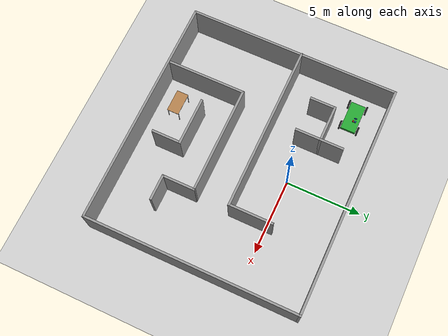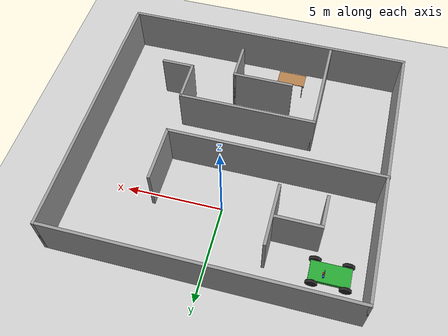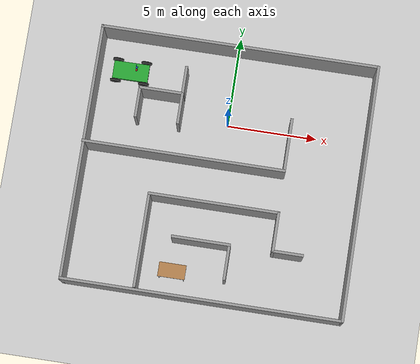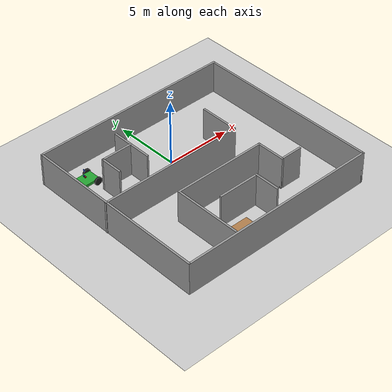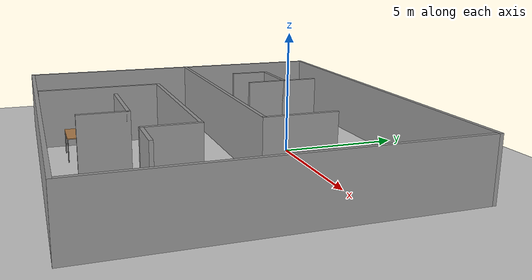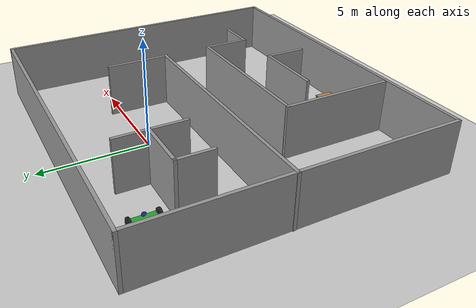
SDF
<sdf version="1.7">
 <world name="default">
  <light name="sun" type="directional">
   <pose>0 0 10 0 -0 0</pose>
   <diffuse>0.8 0.8 0.8 1</diffuse>
   <specular>0.2 0.2 0.2 1</specular>
   <attenuation>
    <range>1000</range>
    <constant>0.9</constant>
    <linear>0.01</linear>
    <quadratic>0.001</quadratic>
   </attenuation>
   <direction>-0.5 0.1 -0.9</direction>
   <spot><inner_angle>0</inner_angle><outer_angle>0</outer_angle><falloff>0</falloff></spot>
  </light>
  <model name="ground_plane">
   <static>1</static>
   <link name="link">
    <collision name="collision">
     <geometry><plane><normal>0 0 1</normal><size>100 100</size></plane></geometry>
     <surface>
      <contact><collide_bitmask>65535</collide_bitmask></contact>
      <friction><ode><mu>100</mu><mu2>50</mu2></ode></friction>
     </surface>
    </collision>
    <visual name="visual">
     <cast_shadows>0</cast_shadows>
     <geometry><plane><normal>0 0 1</normal><size>100 100</size></plane></geometry>
     <material>
      <script><uri>file://media/materials/scripts/gazebo.material</uri><name>Gazebo/Grey</name></script>
     </material>
    </visual>
   </link>
  </model>
  <gravity>0 0 -9.8</gravity>
  <magnetic_field>6e-06 2.3e-05 -4.2e-05</magnetic_field>
  <atmosphere type="adiabatic"/>
  <physics type="ode">
   <max_step_size>0.001</max_step_size>
   <real_time_factor>1</real_time_factor>
   <real_time_update_rate>1000</real_time_update_rate>
  </physics>
  <scene><ambient>0.4 0.4 0.4 1</ambient><background>0.7 0.7 0.7 1</background><shadows>1</shadows></scene>
  <spherical_coordinates>
   <surface_model>EARTH_WGS84</surface_model>
   <latitude_deg>0</latitude_deg>
   <longitude_deg>0</longitude_deg>
   <elevation>0</elevation>
   <heading_deg>0</heading_deg>
  </spherical_coordinates>
  <model name="walls">
   <pose>0.056939 -2.98927 0 0 -0 0</pose>
   <link name="Wall_100">
    <collision name="Wall_100_Collision">
     <geometry><box><size>1.75 0.15 2.5</size></box></geometry>
     <pose>0 0 1.25 0 -0 0</pose>
    </collision>
    <visual name="Wall_100_Visual">
     <pose>0 0 1.25 0 -0 0</pose>
     <geometry><box><size>1.75 0.15 2.5</size></box></geometry>
     <material>
      <script><uri>file://media/materials/scripts/gazebo.material</uri><name>Gazebo/Grey</name></script>
      <ambient>1 1 1 1</ambient>
     </material>
     <meta><layer>0</layer></meta>
    </visual>
    <pose>-5.08634 3.15554 0 0 -0 -1.5708</pose>
   </link>
   <link name="Wall_102">
    <collision name="Wall_102_Collision">
     <geometry><box><size>3.25 0.15 2.5</size></box></geometry>
     <pose>0 0 1.25 0 -0 0</pose>
    </collision>
    <visual name="Wall_102_Visual">
     <pose>0 0 1.25 0 -0 0</pose>
     <geometry><box><size>3.25 0.15 2.5</size></box></geometry>
     <material>
      <script><uri>file://media/materials/scripts/gazebo.material</uri><name>Gazebo/Grey</name></script>
      <ambient>1 1 1 1</ambient>
     </material>
     <meta><layer>0</layer></meta>
    </visual>
    <pose>-0.478768 -3.8985 0 0 -0 0</pose>
   </link>
   <link name="Wall_103">
    <collision name="Wall_103_Collision">
     <geometry><box><size>2 0.15 2.5</size></box></geometry>
     <pose>0 0 1.25 0 -0 0</pose>
    </collision>
    <visual name="Wall_103_Visual">
     <pose>0 0 1.25 0 -0 0</pose>
     <geometry><box><size>2 0.15 2.5</size></box></geometry>
     <material>
      <script><uri>file://media/materials/scripts/gazebo.material</uri><name>Gazebo/Grey</name></script>
      <ambient>1 1 1 1</ambient>
     </material>
     <meta><layer>0</layer></meta>
    </visual>
    <pose>1.07123 -4.8235 0 0 -0 -1.5708</pose>
   </link>
   <link name="Wall_69">
    <collision name="Wall_69_Collision">
     <geometry><box><size>15.5 0.15 2.5</size></box></geometry>
     <pose>0 0 1.25 0 -0 0</pose>
    </collision>
    <visual name="Wall_69_Visual">
     <pose>0 0 1.25 0 -0 0</pose>
     <geometry><box><size>15.5 0.15 2.5</size></box></geometry>
     <material>
      <script><uri>file://media/materials/scripts/gazebo.material</uri><name>Gazebo/Grey</name></script>
      <ambient>1 1 1 1</ambient>
     </material>
     <meta><layer>0</layer></meta>
    </visual>
    <pose>0.014332 7.05 0 0 -0 0</pose>
   </link>
   <link name="Wall_73">
    <collision name="Wall_73_Collision">
     <geometry><box><size>14.25 0.15 2.5</size></box></geometry>
     <pose>0 0 1.25 0 -0 0</pose>
    </collision>
    <visual name="Wall_73_Visual">
     <pose>0 0 1.25 0 -0 0</pose>
     <geometry><box><size>14.25 0.15 2.5</size></box></geometry>
     <material>
      <script><uri>file://media/materials/scripts/gazebo.material</uri><name>Gazebo/Grey</name></script>
      <ambient>1 1 1 1</ambient>
     </material>
     <meta><layer>0</layer></meta>
    </visual>
    <pose>-7.66067 0 0 0 -0 -1.5708</pose>
   </link>
   <link name="Wall_74">
    <collision name="Wall_74_Collision">
     <geometry><box><size>15.5 0.15 2.5</size></box></geometry>
     <pose>0 0 1.25 0 -0 0</pose>
    </collision>
    <visual name="Wall_74_Visual">
     <pose>0 0 1.25 0 -0 0</pose>
     <geometry><box><size>15.5 0.15 2.5</size></box></geometry>
     <material>
      <script><uri>file://media/materials/scripts/gazebo.material</uri><name>Gazebo/Grey</name></script>
      <ambient>1 1 1 1</ambient>
     </material>
     <meta><layer>0</layer></meta>
    </visual>
    <pose>0.014332 -7.05 0 0 -0 0</pose>
   </link>
   <link name="Wall_75">
    <collision name="Wall_75_Collision">
     <geometry><box><size>14.25 0.15 2.5</size></box></geometry>
     <pose>0 0 1.25 0 -0 0</pose>
    </collision>
    <visual name="Wall_75_Visual">
     <pose>0 0 1.25 0 -0 0</pose>
     <geometry><box><size>14.25 0.15 2.5</size></box></geometry>
     <material>
      <script><uri>file://media/materials/scripts/gazebo.material</uri><name>Gazebo/Grey</name></script>
      <ambient>1 1 1 1</ambient>
     </material>
     <meta><layer>0</layer></meta>
    </visual>
    <pose>7.68933 0 0 0 -0 1.5708</pose>
   </link>
   <link name="Wall_88">
    <collision name="Wall_88_Collision">
     <geometry><box><size>11.25 0.15 2.5</size></box></geometry>
     <pose>0 0 1.25 0 -0 0</pose>
    </collision>
    <visual name="Wall_88_Visual">
     <pose>0 0 1.25 0 -0 0</pose>
     <geometry><box><size>11.25 0.15 2.5</size></box></geometry>
     <material>
      <script><uri>file://media/materials/scripts/gazebo.material</uri><name>Gazebo/Grey</name></script>
      <ambient>1 1 1 1</ambient>
     </material>
     <meta><layer>0</layer></meta>
    </visual>
    <pose>-2.13933 0.559198 0 0 -0 0</pose>
   </link>
   <link name="Wall_89">
    <collision name="Wall_89_Collision">
     <geometry><box><size>3 0.15 2.5</size></box></geometry>
     <pose>0 0 1.25 0 -0 0</pose>
    </collision>
    <visual name="Wall_89_Visual">
     <pose>0 0 1.25 0 -0 0</pose>
     <geometry><box><size>3 0.15 2.5</size></box></geometry>
     <material>
      <script><uri>file://media/materials/scripts/gazebo.material</uri><name>Gazebo/Grey</name></script>
      <ambient>1 1 1 1</ambient>
     </material>
     <meta><layer>0</layer></meta>
    </visual>
    <pose>3.41067 1.9842 0 0 -0 1.5708</pose>
   </link>
   <link name="Wall_91">
    <collision name="Wall_91_Collision">
     <geometry><box><size>5.25 0.15 2.5</size></box></geometry>
     <pose>0 0 1.25 0 -0 0</pose>
    </collision>
    <visual name="Wall_91_Visual">
     <pose>0 0 1.25 0 -0 0</pose>
     <geometry><box><size>5.25 0.15 2.5</size></box></geometry>
     <material>
      <script><uri>file://media/materials/scripts/gazebo.material</uri><name>Gazebo/Grey</name></script>
      <ambient>1 1 1 1</ambient>
     </material>
     <meta><layer>0</layer></meta>
    </visual>
    <pose>-3.65618 -4.32029 0 0 -0 1.5708</pose>
   </link>
   <link name="Wall_92">
    <collision name="Wall_92_Collision">
     <geometry><box><size>7.25 0.15 2.5</size></box></geometry>
     <pose>0 0 1.25 0 -0 0</pose>
    </collision>
    <visual name="Wall_92_Visual">
     <pose>0 0 1.25 0 -0 0</pose>
     <geometry><box><size>7.25 0.15 2.5</size></box></geometry>
     <material>
      <script><uri>file://media/materials/scripts/gazebo.material</uri><name>Gazebo/Grey</name></script>
      <ambient>1 1 1 1</ambient>
     </material>
     <meta><layer>0</layer></meta>
    </visual>
    <pose>-0.10618 -1.77029 0 0 -0 0</pose>
   </link>
   <link name="Wall_93">
    <collision name="Wall_93_Collision">
     <geometry><box><size>2.25 0.15 2.5</size></box></geometry>
     <pose>0 0 1.25 0 -0 0</pose>
    </collision>
    <visual name="Wall_93_Visual">
     <pose>0 0 1.25 0 -0 0</pose>
     <geometry><box><size>2.25 0.15 2.5</size></box></geometry>
     <material>
      <script><uri>file://media/materials/scripts/gazebo.material</uri><name>Gazebo/Grey</name></script>
      <ambient>1 1 1 1</ambient>
     </material>
     <meta><layer>0</layer></meta>
    </visual>
    <pose>3.44382 -2.82029 0 0 -0 -1.5708</pose>
   </link>
   <link name="Wall_94">
    <collision name="Wall_94_Collision">
     <geometry><box><size>1.75 0.15 2.5</size></box></geometry>
     <pose>0 0 1.25 0 -0 0</pose>
    </collision>
    <visual name="Wall_94_Visual">
     <pose>0 0 1.25 0 -0 0</pose>
     <geometry><box><size>1.75 0.15 2.5</size></box></geometry>
     <material>
      <script><uri>file://media/materials/scripts/gazebo.material</uri><name>Gazebo/Grey</name></script>
      <ambient>1 1 1 1</ambient>
     </material>
     <meta><layer>0</layer></meta>
    </visual>
    <pose>4.24382 -3.87029 0 0 -0 0</pose>
   </link>
   <link name="Wall_97">
    <collision name="Wall_97_Collision">
     <geometry><box><size>3.25 0.15 2.5</size></box></geometry>
     <pose>0 0 1.25 0 -0 0</pose>
    </collision>
    <visual name="Wall_97_Visual">
     <pose>0 0 1.25 0 -0 0</pose>
     <geometry><box><size>3.25 0.15 2.5</size></box></geometry>
     <material>
      <script><uri>file://media/materials/scripts/gazebo.material</uri><name>Gazebo/Grey</name></script>
      <ambient>1 1 1 1</ambient>
     </material>
     <meta><layer>0</layer></meta>
    </visual>
    <pose>-2.73634 3.87812 0 0 -0 1.5708</pose>
   </link>
   <link name="Wall_99">
    <collision name="Wall_99_Collision">
     <geometry><box><size>2.5 0.15 2.5</size></box></geometry>
     <pose>0 0 1.25 0 -0 0</pose>
    </collision>
    <visual name="Wall_99_Visual">
     <pose>0 0 1.25 0 -0 0</pose>
     <geometry><box><size>2.5 0.15 2.5</size></box></geometry>
     <material>
      <script><uri>file://media/materials/scripts/gazebo.material</uri><name>Gazebo/Grey</name></script>
      <ambient>1 1 1 1</ambient>
     </material>
     <meta><layer>0</layer></meta>
    </visual>
    <pose>-3.91134 3.95554 0 0 -0 3.14159</pose>
   </link>
   <static>1</static>
  </model>
  <model name="table">
   <static>1</static>
   <link name="link">
    <collision name="surface">
     <pose>0 0 1 0 -0 0</pose>
     <geometry><box><size>1.5 0.8 0.03</size></box></geometry>
     <surface><friction><ode><mu>0.6</mu><mu2>0.6</mu2></ode></friction></surface>
    </collision>
    <visual name="visual1">
     <pose>0 0 1 0 -0 0</pose>
     <geometry><box><size>1.5 0.8 0.03</size></box></geometry>
     <material>
      <script><uri>file://media/materials/scripts/gazebo.material</uri><name>Gazebo/Wood</name></script>
     </material>
    </visual>
    <collision name="front_left_leg">
     <pose>0.68 0.38 0.5 0 -0 0</pose>
     <geometry><cylinder><radius>0.02</radius><length>1</length></cylinder></geometry>
    </collision>
    <visual name="front_left_leg">
     <pose>0.68 0.38 0.5 0 -0 0</pose>
     <geometry><cylinder><radius>0.02</radius><length>1</length></cylinder></geometry>
     <material>
      <script><uri>file://media/materials/scripts/gazebo.material</uri><name>Gazebo/Grey</name></script>
     </material>
    </visual>
    <collision name="front_right_leg">
     <pose>0.68 -0.38 0.5 0 -0 0</pose>
     <geometry><cylinder><radius>0.02</radius><length>1</length></cylinder></geometry>
    </collision>
    <visual name="front_right_leg">
     <pose>0.68 -0.38 0.5 0 -0 0</pose>
     <geometry><cylinder><radius>0.02</radius><length>1</length></cylinder></geometry>
     <material>
      <script><uri>file://media/materials/scripts/gazebo.material</uri><name>Gazebo/Grey</name></script>
     </material>
    </visual>
    <collision name="back_right_leg">
     <pose>-0.68 -0.38 0.5 0 -0 0</pose>
     <geometry><cylinder><radius>0.02</radius><length>1</length></cylinder></geometry>
    </collision>
    <visual name="back_right_leg">
     <pose>-0.68 -0.38 0.5 0 -0 0</pose>
     <geometry><cylinder><radius>0.02</radius><length>1</length></cylinder></geometry>
     <material>
      <script><uri>file://media/materials/scripts/gazebo.material</uri><name>Gazebo/Grey</name></script>
     </material>
    </visual>
    <collision name="back_left_leg">
     <pose>-0.68 0.38 0.5 0 -0 0</pose>
     <geometry><cylinder><radius>0.02</radius><length>1</length></cylinder></geometry>
    </collision>
    <visual name="back_left_leg">
     <pose>-0.68 0.38 0.5 0 -0 0</pose>
     <geometry><cylinder><radius>0.02</radius><length>1</length></cylinder></geometry>
     <material>
      <script><uri>file://media/materials/scripts/gazebo.material</uri><name>Gazebo/Grey</name></script>
     </material>
    </visual>
   </link>
   <pose>-1.77974 -8.60732 0 0 -0 0</pose>
  </model>
  <model name="car">
   <link name="chassis">
    <pose>0 0 0.3 0 -0 0</pose>
    <collision name="collision"><geometry><box><size>2 1 0.2</size></box></geometry></collision>
    <visual name="visual">
     <geometry><box><size>2 1 0.2</size></box></geometry>
     <material>
      <script><uri>file://media/materials/scripts/gazebo.material</uri><name>Gazebo/Green</name></script>
     </material>
    </visual>
    <inertial>
     <inertia><ixx>1</ixx><ixy>0</ixy><ixz>0</ixz><iyy>1</iyy><iyz>0</iyz><izz>1</izz></inertia>
     <mass>1</mass>
    </inertial>
   </link>
   <link name="front_left_wheel">
    <pose>0.8 0.6 0.3 -0 1.5707 1.5707</pose>
    <collision name="collision">
     <geometry><cylinder><radius>0.3</radius><length>0.1</length></cylinder></geometry>
    </collision>
    <visual name="visual">
     <geometry><cylinder><radius>0.3</radius><length>0.1</length></cylinder></geometry>
     <material>
      <script><uri>file://media/materials/scripts/gazebo.material</uri><name>Gazebo/Black</name></script>
     </material>
    </visual>
    <inertial>
     <inertia><ixx>1</ixx><ixy>0</ixy><ixz>0</ixz><iyy>1</iyy><iyz>0</iyz><izz>1</izz></inertia>
     <mass>1</mass>
    </inertial>
   </link>
   <link name="front_right_wheel">
    <pose>0.8 -0.6 0.3 -0 1.5707 1.5707</pose>
    <collision name="collision">
     <geometry><cylinder><radius>0.3</radius><length>0.1</length></cylinder></geometry>
    </collision>
    <visual name="visual">
     <geometry><cylinder><radius>0.3</radius><length>0.1</length></cylinder></geometry>
     <material>
      <script><uri>file://media/materials/scripts/gazebo.material</uri><name>Gazebo/Black</name></script>
     </material>
    </visual>
    <inertial>
     <inertia><ixx>1</ixx><ixy>0</ixy><ixz>0</ixz><iyy>1</iyy><iyz>0</iyz><izz>1</izz></inertia>
     <mass>1</mass>
    </inertial>
   </link>
   <link name="back_right_wheel">
    <pose>-0.8 -0.6 0.3 -0 1.5707 1.5707</pose>
    <collision name="collision">
     <geometry><cylinder><radius>0.3</radius><length>0.1</length></cylinder></geometry>
    </collision>
    <visual name="visual">
     <geometry><cylinder><radius>0.3</radius><length>0.1</length></cylinder></geometry>
     <material>
      <script><uri>file://media/materials/scripts/gazebo.material</uri><name>Gazebo/Black</name></script>
     </material>
    </visual>
    <inertial>
     <inertia><ixx>1</ixx><ixy>0</ixy><ixz>0</ixz><iyy>1</iyy><iyz>0</iyz><izz>1</izz></inertia>
     <mass>1</mass>
    </inertial>
   </link>
   <link name="back_left_wheel">
    <pose>-0.8 0.6 0.3 -0 1.5707 1.5707</pose>
    <collision name="collision">
     <geometry><cylinder><radius>0.3</radius><length>0.1</length></cylinder></geometry>
    </collision>
    <visual name="visual">
     <geometry><cylinder><radius>0.3</radius><length>0.1</length></cylinder></geometry>
     <material>
      <script><uri>file://media/materials/scripts/gazebo.material</uri><name>Gazebo/Black</name></script>
     </material>
    </visual>
    <inertial>
     <inertia><ixx>1</ixx><ixy>0</ixy><ixz>0</ixz><iyy>1</iyy><iyz>0</iyz><izz>1</izz></inertia>
     <mass>1</mass>
    </inertial>
   </link>
   <link name="gas_pedal">
    <pose>0.3 0.1 0.5 0 -0 0</pose>
    <collision name="collision"><geometry><box><size>0.1 0.1 0.1</size></box></geometry></collision>
    <visual name="visual">
     <geometry><box><size>0.1 0.1 0.1</size></box></geometry>
     <material>
      <script><uri>file://media/materials/scripts/gazebo.material</uri><name>Gazebo/Red</name></script>
     </material>
    </visual>
    <inertial>
     <inertia><ixx>1</ixx><ixy>0</ixy><ixz>0</ixz><iyy>1</iyy><iyz>0</iyz><izz>1</izz></inertia>
     <mass>1</mass>
    </inertial>
   </link>
   <link name="brake_pedal">
    <pose>0.3 0.25 0.5 0 -0 0</pose>
    <collision name="collision"><geometry><box><size>0.1 0.1 0.1</size></box></geometry></collision>
    <visual name="visual">
     <geometry><box><size>0.1 0.1 0.1</size></box></geometry>
     <material>
      <script><uri>file://media/materials/scripts/gazebo.material</uri><name>Gazebo/Blue</name></script>
     </material>
    </visual>
    <inertial>
     <inertia><ixx>1</ixx><ixy>0</ixy><ixz>0</ixz><iyy>1</iyy><iyz>0</iyz><izz>1</izz></inertia>
     <mass>1</mass>
    </inertial>
   </link>
   <link name="steering_wheel">
    <pose>0.3 0.2 1 0 1.5707 0</pose>
    <collision name="collision">
     <geometry><cylinder><radius>0.1</radius><length>0.01</length></cylinder></geometry>
    </collision>
    <visual name="visual">
     <geometry><cylinder><radius>0.1</radius><length>0.01</length></cylinder></geometry>
     <material>
      <script><uri>file://media/materials/scripts/gazebo.material</uri><name>Gazebo/Blue</name></script>
     </material>
    </visual>
    <inertial>
     <inertia><ixx>1</ixx><ixy>0</ixy><ixz>0</ixz><iyy>1</iyy><iyz>0</iyz><izz>1</izz></inertia>
     <mass>1</mass>
    </inertial>
   </link>
   <joint name="gas_joint" type="prismatic">
    <parent>chassis</parent>
    <child>gas_pedal</child>
    <axis>
     <xyz expressed_in="__model__">1 0 0</xyz>
     <limit><lower>0</lower><upper>0.2</upper></limit>
     <dynamics><spring_reference>0</spring_reference><spring_stiffness>0</spring_stiffness></dynamics>
    </axis>
   </joint>
   <joint name="brake_joint" type="prismatic">
    <parent>chassis</parent>
    <child>brake_pedal</child>
    <axis>
     <xyz expressed_in="__model__">1 0 0</xyz>
     <limit><lower>0</lower><upper>0.2</upper></limit>
     <dynamics><spring_reference>0</spring_reference><spring_stiffness>0</spring_stiffness></dynamics>
    </axis>
   </joint>
   <joint name="steering_joint" type="revolute">
    <parent>chassis</parent>
    <child>steering_wheel</child>
    <axis>
     <xyz expressed_in="__model__">1 0 0</xyz>
     <limit><lower>-7.853</lower><upper>7.853</upper></limit>
     <dynamics><spring_reference>0</spring_reference><spring_stiffness>0</spring_stiffness></dynamics>
    </axis>
   </joint>
   <joint name="front_left_joint" type="revolute2">
    <parent>chassis</parent>
    <child>front_left_wheel</child>
    <axis>
     <xyz expressed_in="__model__">0 0 1</xyz>
     <limit><lower>1.72449e-07</lower><upper>1.72449e-07</upper></limit>
     <dynamics><spring_reference>0</spring_reference><spring_stiffness>0</spring_stiffness></dynamics>
    </axis>
    <axis2>
     <xyz expressed_in="__model__">0 1 0</xyz>
     <limit><upper>1e+16</upper><lower>-1e+16</lower></limit>
     <dynamics><spring_reference>0</spring_reference><spring_stiffness>0</spring_stiffness></dynamics>
    </axis2>
    <physics><ode><limit><cfm>0</cfm><erp>0.9</erp></limit></ode></physics>
   </joint>
   <joint name="front_right_joint" type="revolute2">
    <parent>chassis</parent>
    <child>front_right_wheel</child>
    <axis>
     <xyz expressed_in="__model__">0 0 1</xyz>
     <limit><lower>1.72449e-07</lower><upper>1.72449e-07</upper></limit>
     <dynamics><spring_reference>0</spring_reference><spring_stiffness>0</spring_stiffness></dynamics>
    </axis>
    <axis2>
     <xyz expressed_in="__model__">0 1 0</xyz>
     <limit><upper>1e+16</upper><lower>-1e+16</lower></limit>
     <dynamics><spring_reference>0</spring_reference><spring_stiffness>0</spring_stiffness></dynamics>
    </axis2>
    <physics><ode><limit><cfm>0</cfm><erp>0.9</erp></limit></ode></physics>
   </joint>
   <joint name="back_right_joint" type="revolute2">
    <parent>chassis</parent>
    <child>back_right_wheel</child>
    <axis>
     <xyz expressed_in="__model__">0 0 1</xyz>
     <limit><lower>0</lower><upper>0</upper></limit>
     <dynamics><spring_reference>0</spring_reference><spring_stiffness>0</spring_stiffness></dynamics>
    </axis>
    <axis2>
     <xyz expressed_in="__model__">0 1 0</xyz>
     <limit><upper>1e+16</upper><lower>-1e+16</lower></limit>
     <dynamics><spring_reference>0</spring_reference><spring_stiffness>0</spring_stiffness></dynamics>
    </axis2>
    <physics><ode><limit><cfm>0</cfm><erp>0.9</erp></limit></ode></physics>
   </joint>
   <joint name="back_left_joint" type="revolute2">
    <parent>chassis</parent>
    <child>back_left_wheel</child>
    <axis>
     <xyz expressed_in="__model__">0 0 1</xyz>
     <limit><lower>0</lower><upper>0</upper></limit>
     <dynamics><spring_reference>0</spring_reference><spring_stiffness>0</spring_stiffness></dynamics>
    </axis>
    <axis2>
     <xyz expressed_in="__model__">0 1 0</xyz>
     <limit><upper>1e+16</upper><lower>-1e+16</lower></limit>
     <dynamics><spring_reference>0</spring_reference><spring_stiffness>0</spring_stiffness></dynamics>
    </axis2>
    <physics><ode><limit><cfm>0</cfm><erp>0.9</erp></limit></ode></physics>
   </joint>
   <plugin name="vehicle" filename="libVehiclePlugin.so">
    <front_left>front_left_joint</front_left>
    <front_right>front_right_joint</front_right>
    <back_left>back_left_joint</back_left>
    <back_right>back_right_joint</back_right>
    <gas>gas_joint</gas>
    <brake>brake_joint</brake>
    <steering>steering_joint</steering>
    <front_power>10</front_power>
    <rear_power>10</rear_power>
    <tire_angle_range>0.5</tire_angle_range>
    <max_speed>10</max_speed>
    <aero_load>0.1</aero_load>
   </plugin>
   <pose>-5.84656 2.19462 9e-06 -6e-06 3e-06 0.007095</pose>
  </model>
 </world>
</sdf>
